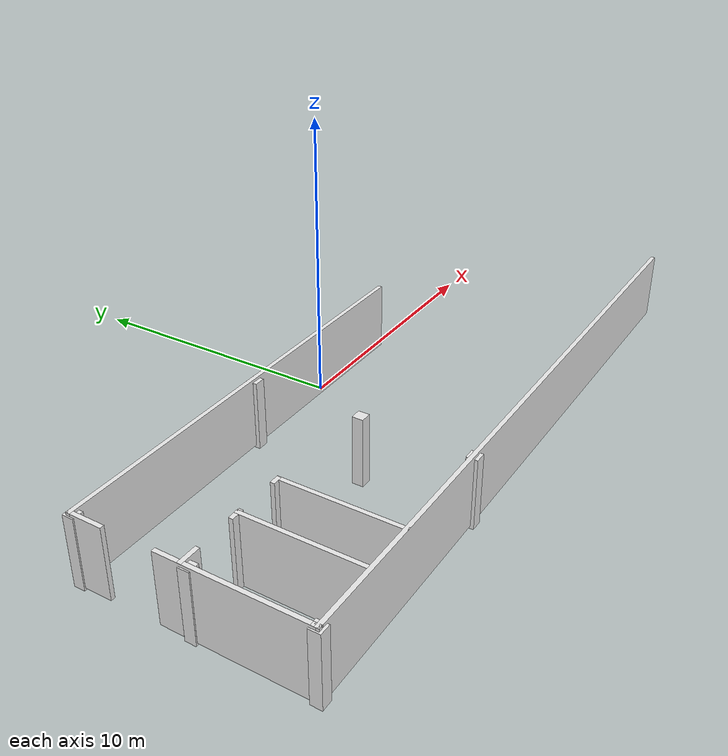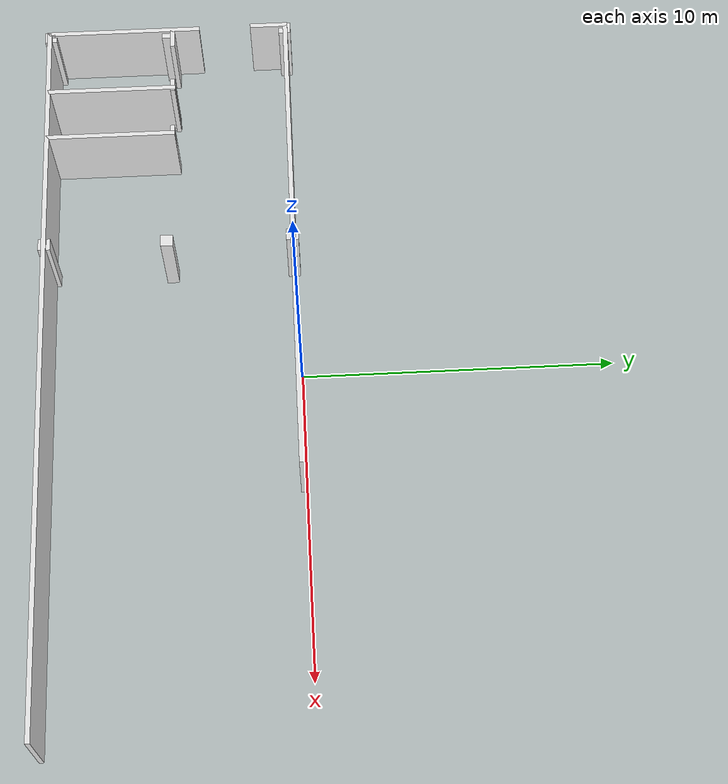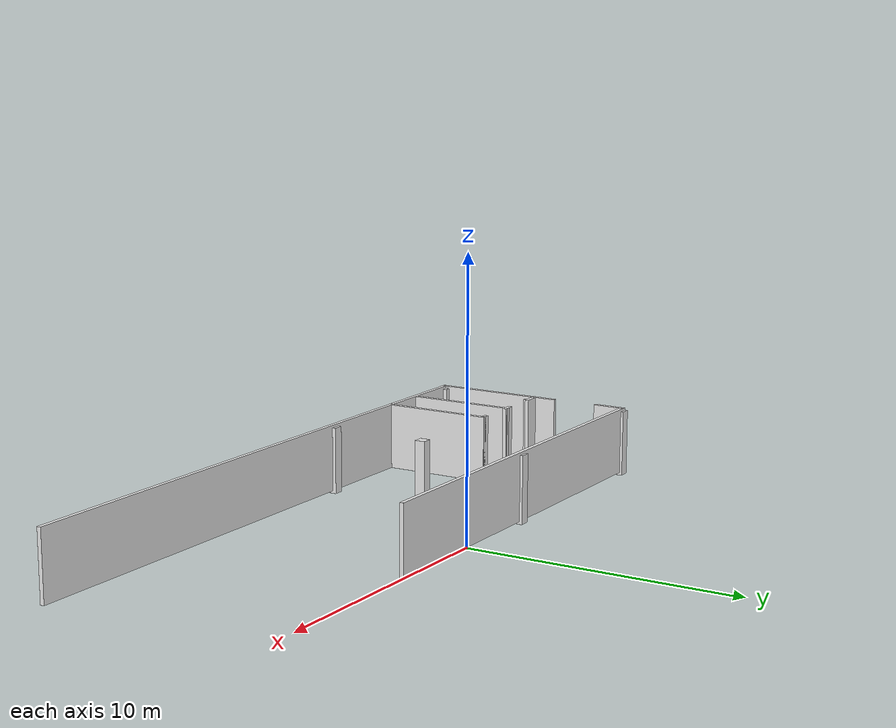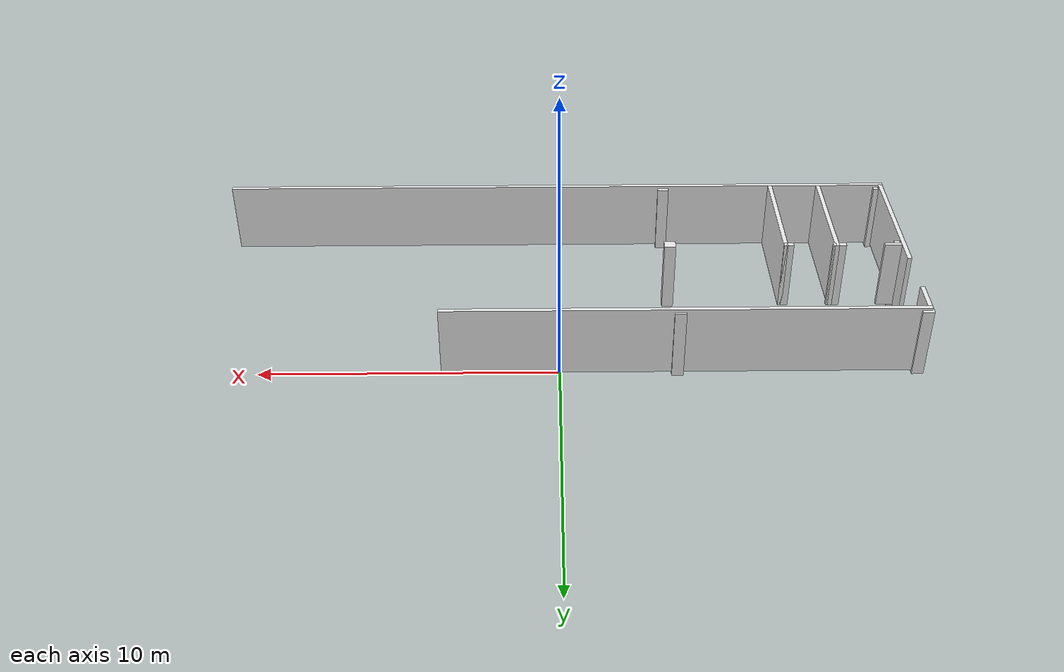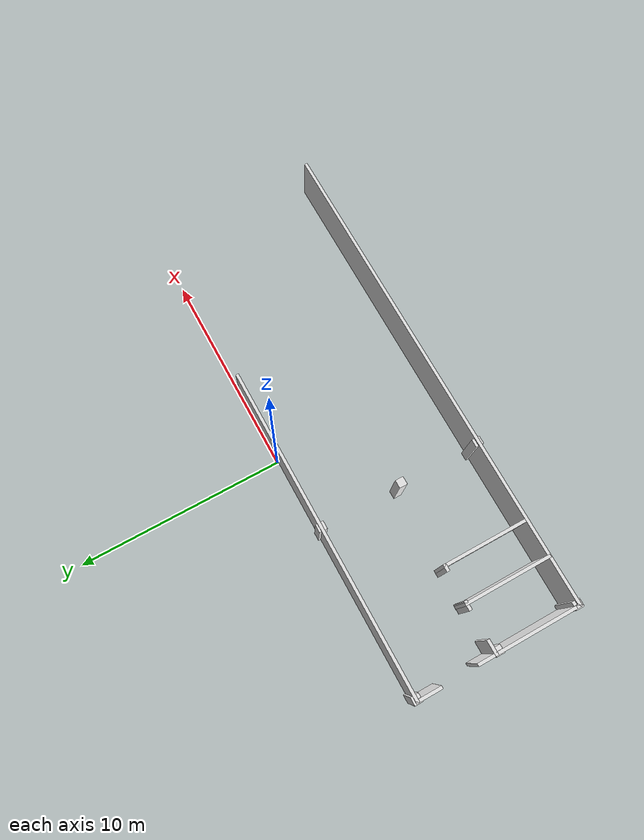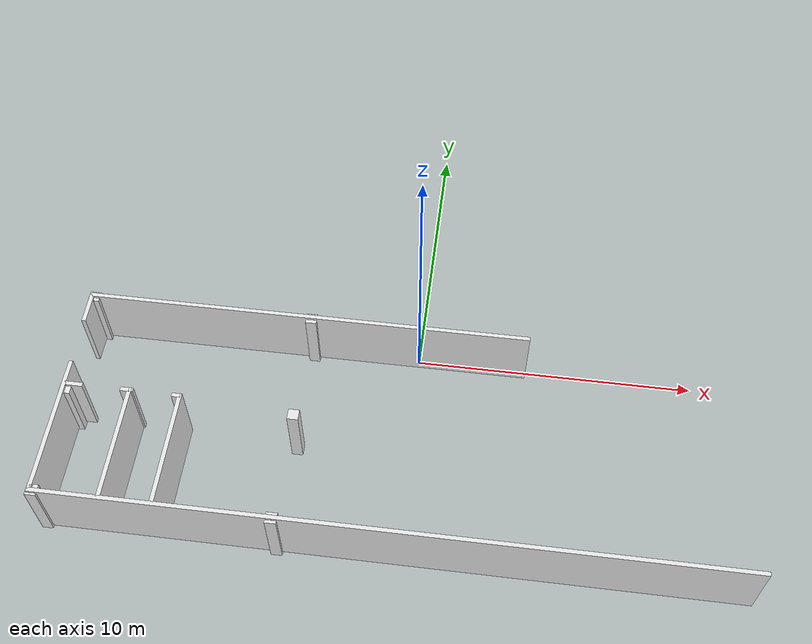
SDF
<sdf version="1.6">
 <model name="h_wall">
  <link name="Wall_1">
   <pose>-4.06743 -0.107748 0 0 -0 3.14159</pose>
   <visual name="Wall_1_Visual">
    <pose>0 0 1.25 0 -0 0</pose>
    <geometry><box><size>16 0.15 2.5</size></box></geometry>
    <material>
     <script><uri>file://media/materials/scripts/gazebo.material</uri><name>Gazebo/White</name></script>
     <ambient>1 1 1 1</ambient>
     <diffuse>0.7 0.7 0.7 1</diffuse>
     <specular>0.01 0.01 0.01 1</specular>
     <emissive>0 0 0 1</emissive>
    </material>
   </visual>
   <collision name="Wall_1_Collision">
    <pose>0 0 1.25 0 -0 0</pose>
    <geometry><box><size>16 0.15 2.5</size></box></geometry>
    <surface>
     <friction>
      <ode><mu>1</mu><mu2>1</mu2><fdir1>0 0 0</fdir1><slip1>0</slip1><slip2>0</slip2></ode>
      <torsional>
       <coefficient>1</coefficient>
       <patch_radius>0</patch_radius>
       <surface_radius>0</surface_radius>
       <use_patch_radius>1</use_patch_radius>
       <ode><slip>0</slip></ode>
      </torsional>
     </friction>
     <bounce><restitution_coefficient>0</restitution_coefficient><threshold>1e+06</threshold></bounce>
     <contact>
      <collide_without_contact>0</collide_without_contact>
      <collide_without_contact_bitmask>1</collide_without_contact_bitmask>
      <collide_bitmask>1</collide_bitmask>
      <ode>
       <soft_cfm>0</soft_cfm>
       <soft_erp>0.2</soft_erp>
       <kp>1e+13</kp>
       <kd>1</kd>
       <max_vel>0.01</max_vel>
       <min_depth>0</min_depth>
      </ode>
      <bullet>
       <split_impulse>1</split_impulse>
       <split_impulse_penetration_threshold>-0.01</split_impulse_penetration_threshold>
       <soft_cfm>0</soft_cfm>
       <soft_erp>0.2</soft_erp>
       <kp>1e+13</kp>
       <kd>1</kd>
      </bullet>
     </contact>
    </surface>
   </collision>
  </link>
  <link name="Wall_10">
   <pose>-0.032574 -8.025 0 0 -0 0</pose>
   <visual name="Wall_10_Visual">
    <pose>0 0 1.25 0 -0 0</pose>
    <geometry><box><size>24 0.15 2.5</size></box></geometry>
    <material>
     <script><uri>file://media/materials/scripts/gazebo.material</uri><name>Gazebo/White</name></script>
     <ambient>1 1 1 1</ambient>
     <diffuse>0.7 0.7 0.7 1</diffuse>
     <specular>0.01 0.01 0.01 1</specular>
     <emissive>0 0 0 1</emissive>
    </material>
   </visual>
   <collision name="Wall_10_Collision">
    <pose>0 0 1.25 0 -0 0</pose>
    <geometry><box><size>24 0.15 2.5</size></box></geometry>
    <surface>
     <friction>
      <ode><mu>1</mu><mu2>1</mu2><fdir1>0 0 0</fdir1><slip1>0</slip1><slip2>0</slip2></ode>
      <torsional>
       <coefficient>1</coefficient>
       <patch_radius>0</patch_radius>
       <surface_radius>0</surface_radius>
       <use_patch_radius>1</use_patch_radius>
       <ode><slip>0</slip></ode>
      </torsional>
     </friction>
     <bounce><restitution_coefficient>0</restitution_coefficient><threshold>1e+06</threshold></bounce>
     <contact>
      <collide_without_contact>0</collide_without_contact>
      <collide_without_contact_bitmask>1</collide_without_contact_bitmask>
      <collide_bitmask>1</collide_bitmask>
      <ode>
       <soft_cfm>0</soft_cfm>
       <soft_erp>0.2</soft_erp>
       <kp>1e+13</kp>
       <kd>1</kd>
       <max_vel>0.01</max_vel>
       <min_depth>0</min_depth>
      </ode>
      <bullet>
       <split_impulse>1</split_impulse>
       <split_impulse_penetration_threshold>-0.01</split_impulse_penetration_threshold>
       <soft_cfm>0</soft_cfm>
       <soft_erp>0.2</soft_erp>
       <kp>1e+13</kp>
       <kd>1</kd>
      </bullet>
     </contact>
    </surface>
   </collision>
  </link>
  <link name="Wall_19">
   <pose>-11.6601 -3.90046 0 0 -0 0</pose>
   <inertial>
    <inertia><ixx>nan</ixx><ixy>0</ixy><ixz>0</ixz><iyy>nan</iyy><iyz>0</iyz><izz>nan</izz></inertia>
    <mass>0</mass>
   </inertial>
   <visual name="Wall_19_Visual">
    <pose>0 0 1.25 0 -0 0</pose>
    <geometry><box><size>0.736562 0.15 2.5</size></box></geometry>
    <material>
     <script><uri>file://media/materials/scripts/gazebo.material</uri><name>Gazebo/White</name></script>
     <ambient>1 1 1 1</ambient>
     <diffuse>0.7 0.7 0.7 1</diffuse>
     <specular>0.01 0.01 0.01 1</specular>
     <emissive>0 0 0 1</emissive>
    </material>
   </visual>
   <collision name="Wall_19_Collision">
    <pose>0 0 1.25 0 -0 0</pose>
    <geometry><box><size>0.736562 0.15 2.5</size></box></geometry>
    <surface>
     <friction>
      <ode><mu>1</mu><mu2>1</mu2><fdir1>0 0 0</fdir1><slip1>0</slip1><slip2>0</slip2></ode>
      <torsional>
       <coefficient>1</coefficient>
       <patch_radius>0</patch_radius>
       <surface_radius>0</surface_radius>
       <use_patch_radius>1</use_patch_radius>
       <ode><slip>0</slip></ode>
      </torsional>
     </friction>
     <bounce><restitution_coefficient>0</restitution_coefficient><threshold>1e+06</threshold></bounce>
     <contact>
      <collide_without_contact>0</collide_without_contact>
      <collide_without_contact_bitmask>1</collide_without_contact_bitmask>
      <collide_bitmask>1</collide_bitmask>
      <ode>
       <soft_cfm>0</soft_cfm>
       <soft_erp>0.2</soft_erp>
       <kp>1e+13</kp>
       <kd>1</kd>
       <max_vel>0.01</max_vel>
       <min_depth>0</min_depth>
      </ode>
      <bullet>
       <split_impulse>1</split_impulse>
       <split_impulse_penetration_threshold>-0.01</split_impulse_penetration_threshold>
       <soft_cfm>0</soft_cfm>
       <soft_erp>0.2</soft_erp>
       <kp>1e+13</kp>
       <kd>1</kd>
      </bullet>
     </contact>
    </surface>
   </collision>
  </link>
  <link name="Wall_2">
   <pose>-11.9924 -0.657748 0 0 0 -1.5708</pose>
   <visual name="Wall_2_Visual">
    <pose>0 0 1.25 0 -0 0</pose>
    <geometry><box><size>1.25 0.15 2.5</size></box></geometry>
    <material>
     <script><uri>file://media/materials/scripts/gazebo.material</uri><name>Gazebo/White</name></script>
     <ambient>1 1 1 1</ambient>
     <diffuse>0.7 0.7 0.7 1</diffuse>
     <specular>0.01 0.01 0.01 1</specular>
     <emissive>0 0 0 1</emissive>
    </material>
   </visual>
   <collision name="Wall_2_Collision">
    <pose>0 0 1.25 0 -0 0</pose>
    <geometry><box><size>1.25 0.15 2.5</size></box></geometry>
    <surface>
     <friction>
      <ode><mu>1</mu><mu2>1</mu2><fdir1>0 0 0</fdir1><slip1>0</slip1><slip2>0</slip2></ode>
      <torsional>
       <coefficient>1</coefficient>
       <patch_radius>0</patch_radius>
       <surface_radius>0</surface_radius>
       <use_patch_radius>1</use_patch_radius>
       <ode><slip>0</slip></ode>
      </torsional>
     </friction>
     <bounce><restitution_coefficient>0</restitution_coefficient><threshold>1e+06</threshold></bounce>
     <contact>
      <collide_without_contact>0</collide_without_contact>
      <collide_without_contact_bitmask>1</collide_without_contact_bitmask>
      <collide_bitmask>1</collide_bitmask>
      <ode>
       <soft_cfm>0</soft_cfm>
       <soft_erp>0.2</soft_erp>
       <kp>1e+13</kp>
       <kd>1</kd>
       <max_vel>0.01</max_vel>
       <min_depth>0</min_depth>
      </ode>
      <bullet>
       <split_impulse>1</split_impulse>
       <split_impulse_penetration_threshold>-0.01</split_impulse_penetration_threshold>
       <soft_cfm>0</soft_cfm>
       <soft_erp>0.2</soft_erp>
       <kp>1e+13</kp>
       <kd>1</kd>
      </bullet>
     </contact>
    </surface>
   </collision>
  </link>
  <link name="Wall_21">
   <pose>-9.73392 -3.90046 0 0 -0 0</pose>
   <inertial>
    <inertia><ixx>nan</ixx><ixy>0</ixy><ixz>0</ixz><iyy>nan</iyy><iyz>0</iyz><izz>nan</izz></inertia>
    <mass>0</mass>
   </inertial>
   <visual name="Wall_21_Visual">
    <pose>0 0 1.25 0 -0 0</pose>
    <geometry><box><size>0.453657 0.15 2.5</size></box></geometry>
    <material>
     <script><uri>file://media/materials/scripts/gazebo.material</uri><name>Gazebo/White</name></script>
     <ambient>1 1 1 1</ambient>
     <diffuse>0.7 0.7 0.7 1</diffuse>
     <specular>0.01 0.01 0.01 1</specular>
     <emissive>0 0 0 1</emissive>
    </material>
   </visual>
   <collision name="Wall_21_Collision">
    <pose>0 0 1.25 0 -0 0</pose>
    <geometry><box><size>0.453657 0.15 2.5</size></box></geometry>
    <surface>
     <friction>
      <ode><mu>1</mu><mu2>1</mu2><fdir1>0 0 0</fdir1><slip1>0</slip1><slip2>0</slip2></ode>
      <torsional>
       <coefficient>1</coefficient>
       <patch_radius>0</patch_radius>
       <surface_radius>0</surface_radius>
       <use_patch_radius>1</use_patch_radius>
       <ode><slip>0</slip></ode>
      </torsional>
     </friction>
     <bounce><restitution_coefficient>0</restitution_coefficient><threshold>1e+06</threshold></bounce>
     <contact>
      <collide_without_contact>0</collide_without_contact>
      <collide_without_contact_bitmask>1</collide_without_contact_bitmask>
      <collide_bitmask>1</collide_bitmask>
      <ode>
       <soft_cfm>0</soft_cfm>
       <soft_erp>0.2</soft_erp>
       <kp>1e+13</kp>
       <kd>1</kd>
       <max_vel>0.01</max_vel>
       <min_depth>0</min_depth>
      </ode>
      <bullet>
       <split_impulse>1</split_impulse>
       <split_impulse_penetration_threshold>-0.01</split_impulse_penetration_threshold>
       <soft_cfm>0</soft_cfm>
       <soft_erp>0.2</soft_erp>
       <kp>1e+13</kp>
       <kd>1</kd>
      </bullet>
     </contact>
    </surface>
   </collision>
  </link>
  <link name="Wall_24">
   <pose>-9.64084 -5.94162 0 0 -0 1.5708</pose>
   <visual name="Wall_24_Visual">
    <pose>0 0 1.25 0 -0 0</pose>
    <geometry><box><size>4.25 0.15 2.5</size></box></geometry>
    <material>
     <script><uri>file://media/materials/scripts/gazebo.material</uri><name>Gazebo/White</name></script>
     <ambient>1 1 1 1</ambient>
     <diffuse>0.7 0.7 0.7 1</diffuse>
     <specular>0.01 0.01 0.01 1</specular>
     <emissive>0 0 0 1</emissive>
    </material>
   </visual>
   <collision name="Wall_24_Collision">
    <pose>0 0 1.25 0 -0 0</pose>
    <geometry><box><size>4.25 0.15 2.5</size></box></geometry>
    <surface>
     <friction>
      <ode><mu>1</mu><mu2>1</mu2><fdir1>0 0 0</fdir1><slip1>0</slip1><slip2>0</slip2></ode>
      <torsional>
       <coefficient>1</coefficient>
       <patch_radius>0</patch_radius>
       <surface_radius>0</surface_radius>
       <use_patch_radius>1</use_patch_radius>
       <ode><slip>0</slip></ode>
      </torsional>
     </friction>
     <bounce><restitution_coefficient>0</restitution_coefficient><threshold>1e+06</threshold></bounce>
     <contact>
      <collide_without_contact>0</collide_without_contact>
      <collide_without_contact_bitmask>1</collide_without_contact_bitmask>
      <collide_bitmask>1</collide_bitmask>
      <ode>
       <soft_cfm>0</soft_cfm>
       <soft_erp>0.2</soft_erp>
       <kp>1e+13</kp>
       <kd>1</kd>
       <max_vel>0.01</max_vel>
       <min_depth>0</min_depth>
      </ode>
      <bullet>
       <split_impulse>1</split_impulse>
       <split_impulse_penetration_threshold>-0.01</split_impulse_penetration_threshold>
       <soft_cfm>0</soft_cfm>
       <soft_erp>0.2</soft_erp>
       <kp>1e+13</kp>
       <kd>1</kd>
      </bullet>
     </contact>
    </surface>
   </collision>
  </link>
  <link name="Wall_30">
   <pose>-7.97483 -3.91861 0 0 -0 0</pose>
   <inertial>
    <inertia><ixx>nan</ixx><ixy>0</ixy><ixz>0</ixz><iyy>nan</iyy><iyz>0</iyz><izz>nan</izz></inertia>
    <mass>0</mass>
   </inertial>
   <visual name="Wall_30_Visual">
    <pose>0 0 1.25 0 -0 0</pose>
    <geometry><box><size>0.337076 0.15 2.5</size></box></geometry>
    <material>
     <script><uri>file://media/materials/scripts/gazebo.material</uri><name>Gazebo/White</name></script>
     <ambient>1 1 1 1</ambient>
     <diffuse>0.7 0.7 0.7 1</diffuse>
     <specular>0.01 0.01 0.01 1</specular>
     <emissive>0 0 0 1</emissive>
    </material>
   </visual>
   <collision name="Wall_30_Collision">
    <pose>0 0 1.25 0 -0 0</pose>
    <geometry><box><size>0.337076 0.15 2.5</size></box></geometry>
    <surface>
     <friction>
      <ode><mu>1</mu><mu2>1</mu2><fdir1>0 0 0</fdir1><slip1>0</slip1><slip2>0</slip2></ode>
      <torsional>
       <coefficient>1</coefficient>
       <patch_radius>0</patch_radius>
       <surface_radius>0</surface_radius>
       <use_patch_radius>1</use_patch_radius>
       <ode><slip>0</slip></ode>
      </torsional>
     </friction>
     <bounce><restitution_coefficient>0</restitution_coefficient><threshold>1e+06</threshold></bounce>
     <contact>
      <collide_without_contact>0</collide_without_contact>
      <collide_without_contact_bitmask>1</collide_without_contact_bitmask>
      <collide_bitmask>1</collide_bitmask>
      <ode>
       <soft_cfm>0</soft_cfm>
       <soft_erp>0.2</soft_erp>
       <kp>1e+13</kp>
       <kd>1</kd>
       <max_vel>0.01</max_vel>
       <min_depth>0</min_depth>
      </ode>
      <bullet>
       <split_impulse>1</split_impulse>
       <split_impulse_penetration_threshold>-0.01</split_impulse_penetration_threshold>
       <soft_cfm>0</soft_cfm>
       <soft_erp>0.2</soft_erp>
       <kp>1e+13</kp>
       <kd>1</kd>
      </bullet>
     </contact>
    </surface>
   </collision>
  </link>
  <link name="Wall_31">
   <pose>-7.86723 -5.96861 0 0 0 -1.5708</pose>
   <visual name="Wall_31_Visual">
    <pose>0 0 1.25 0 -0 0</pose>
    <geometry><box><size>4.25 0.15 2.5</size></box></geometry>
    <material>
     <script><uri>file://media/materials/scripts/gazebo.material</uri><name>Gazebo/White</name></script>
     <ambient>1 1 1 1</ambient>
     <diffuse>0.7 0.7 0.7 1</diffuse>
     <specular>0.01 0.01 0.01 1</specular>
     <emissive>0 0 0 1</emissive>
    </material>
   </visual>
   <collision name="Wall_31_Collision">
    <pose>0 0 1.25 0 -0 0</pose>
    <geometry><box><size>4.25 0.15 2.5</size></box></geometry>
    <surface>
     <friction>
      <ode><mu>1</mu><mu2>1</mu2><fdir1>0 0 0</fdir1><slip1>0</slip1><slip2>0</slip2></ode>
      <torsional>
       <coefficient>1</coefficient>
       <patch_radius>0</patch_radius>
       <surface_radius>0</surface_radius>
       <use_patch_radius>1</use_patch_radius>
       <ode><slip>0</slip></ode>
      </torsional>
     </friction>
     <bounce><restitution_coefficient>0</restitution_coefficient><threshold>1e+06</threshold></bounce>
     <contact>
      <collide_without_contact>0</collide_without_contact>
      <collide_without_contact_bitmask>1</collide_without_contact_bitmask>
      <collide_bitmask>1</collide_bitmask>
      <ode>
       <soft_cfm>0</soft_cfm>
       <soft_erp>0.2</soft_erp>
       <kp>1e+13</kp>
       <kd>1</kd>
       <max_vel>0.01</max_vel>
       <min_depth>0</min_depth>
      </ode>
      <bullet>
       <split_impulse>1</split_impulse>
       <split_impulse_penetration_threshold>-0.01</split_impulse_penetration_threshold>
       <soft_cfm>0</soft_cfm>
       <soft_erp>0.2</soft_erp>
       <kp>1e+13</kp>
       <kd>1</kd>
      </bullet>
     </contact>
    </surface>
   </collision>
  </link>
  <link name="Wall_6">
   <pose>-11.9576 -5.5 0 0 0 -1.5708</pose>
   <visual name="Wall_6_Visual">
    <pose>0 0 1.25 0 -0 0</pose>
    <geometry><box><size>5 0.15 2.5</size></box></geometry>
    <material>
     <script><uri>file://media/materials/scripts/gazebo.material</uri><name>Gazebo/White</name></script>
     <ambient>1 1 1 1</ambient>
     <diffuse>0.7 0.7 0.7 1</diffuse>
     <specular>0.01 0.01 0.01 1</specular>
     <emissive>0 0 0 1</emissive>
    </material>
   </visual>
   <collision name="Wall_6_Collision">
    <pose>0 0 1.25 0 -0 0</pose>
    <geometry><box><size>5 0.15 2.5</size></box></geometry>
    <surface>
     <friction>
      <ode><mu>1</mu><mu2>1</mu2><fdir1>0 0 0</fdir1><slip1>0</slip1><slip2>0</slip2></ode>
      <torsional>
       <coefficient>1</coefficient>
       <patch_radius>0</patch_radius>
       <surface_radius>0</surface_radius>
       <use_patch_radius>1</use_patch_radius>
       <ode><slip>0</slip></ode>
      </torsional>
     </friction>
     <bounce><restitution_coefficient>0</restitution_coefficient><threshold>1e+06</threshold></bounce>
     <contact>
      <collide_without_contact>0</collide_without_contact>
      <collide_without_contact_bitmask>1</collide_without_contact_bitmask>
      <collide_bitmask>1</collide_bitmask>
      <ode>
       <soft_cfm>0</soft_cfm>
       <soft_erp>0.2</soft_erp>
       <kp>1e+13</kp>
       <kd>1</kd>
       <max_vel>0.01</max_vel>
       <min_depth>0</min_depth>
      </ode>
      <bullet>
       <split_impulse>1</split_impulse>
       <split_impulse_penetration_threshold>-0.01</split_impulse_penetration_threshold>
       <soft_cfm>0</soft_cfm>
       <soft_erp>0.2</soft_erp>
       <kp>1e+13</kp>
       <kd>1</kd>
      </bullet>
     </contact>
    </surface>
   </collision>
  </link>
  <link name="Wall_7">
   <pose>-11.9576 -7.975 0 0 0 -1.5708</pose>
   <visual name="Wall_7_Visual">
    <pose>0 0 1.25 0 -0 0</pose>
    <geometry><box><size>0.25 0.15 2.5</size></box></geometry>
    <material>
     <script><uri>file://media/materials/scripts/gazebo.material</uri><name>Gazebo/White</name></script>
     <ambient>1 1 1 1</ambient>
     <diffuse>0.7 0.7 0.7 1</diffuse>
     <specular>0.01 0.01 0.01 1</specular>
     <emissive>0 0 0 1</emissive>
    </material>
   </visual>
   <collision name="Wall_7_Collision">
    <pose>0 0 1.25 0 -0 0</pose>
    <geometry><box><size>0.25 0.15 2.5</size></box></geometry>
    <surface>
     <friction>
      <ode><mu>1</mu><mu2>1</mu2><fdir1>0 0 0</fdir1><slip1>0</slip1><slip2>0</slip2></ode>
      <torsional>
       <coefficient>1</coefficient>
       <patch_radius>0</patch_radius>
       <surface_radius>0</surface_radius>
       <use_patch_radius>1</use_patch_radius>
       <ode><slip>0</slip></ode>
      </torsional>
     </friction>
     <bounce><restitution_coefficient>0</restitution_coefficient><threshold>1e+06</threshold></bounce>
     <contact>
      <collide_without_contact>0</collide_without_contact>
      <collide_without_contact_bitmask>1</collide_without_contact_bitmask>
      <collide_bitmask>1</collide_bitmask>
      <ode>
       <soft_cfm>0</soft_cfm>
       <soft_erp>0.2</soft_erp>
       <kp>1e+13</kp>
       <kd>1</kd>
       <max_vel>0.01</max_vel>
       <min_depth>0</min_depth>
      </ode>
      <bullet>
       <split_impulse>1</split_impulse>
       <split_impulse_penetration_threshold>-0.01</split_impulse_penetration_threshold>
       <soft_cfm>0</soft_cfm>
       <soft_erp>0.2</soft_erp>
       <kp>1e+13</kp>
       <kd>1</kd>
      </bullet>
     </contact>
    </surface>
   </collision>
  </link>
  <link name="Wall_8">
   <pose>-11.9576 -8.025 0 0 -0 0</pose>
   <visual name="Wall_8_Visual">
    <pose>0 0 1.25 0 -0 0</pose>
    <geometry><box><size>0.15 0.15 2.5</size></box></geometry>
    <material>
     <script><uri>file://media/materials/scripts/gazebo.material</uri><name>Gazebo/White</name></script>
     <ambient>1 1 1 1</ambient>
     <diffuse>0.7 0.7 0.7 1</diffuse>
     <specular>0.01 0.01 0.01 1</specular>
     <emissive>0 0 0 1</emissive>
    </material>
   </visual>
   <collision name="Wall_8_Collision">
    <pose>0 0 1.25 0 -0 0</pose>
    <geometry><box><size>0.15 0.15 2.5</size></box></geometry>
    <surface>
     <friction>
      <ode><mu>1</mu><mu2>1</mu2><fdir1>0 0 0</fdir1><slip1>0</slip1><slip2>0</slip2></ode>
      <torsional>
       <coefficient>1</coefficient>
       <patch_radius>0</patch_radius>
       <surface_radius>0</surface_radius>
       <use_patch_radius>1</use_patch_radius>
       <ode><slip>0</slip></ode>
      </torsional>
     </friction>
     <bounce><restitution_coefficient>0</restitution_coefficient><threshold>1e+06</threshold></bounce>
     <contact>
      <collide_without_contact>0</collide_without_contact>
      <collide_without_contact_bitmask>1</collide_without_contact_bitmask>
      <collide_bitmask>1</collide_bitmask>
      <ode>
       <soft_cfm>0</soft_cfm>
       <soft_erp>0.2</soft_erp>
       <kp>1e+13</kp>
       <kd>1</kd>
       <max_vel>0.01</max_vel>
       <min_depth>0</min_depth>
      </ode>
      <bullet>
       <split_impulse>1</split_impulse>
       <split_impulse_penetration_threshold>-0.01</split_impulse_penetration_threshold>
       <soft_cfm>0</soft_cfm>
       <soft_erp>0.2</soft_erp>
       <kp>1e+13</kp>
       <kd>1</kd>
      </bullet>
     </contact>
    </surface>
   </collision>
  </link>
  <link name="link_0_clone_clone_0_clone">
   <pose>-11.9158 -0.127115 1.1564 0 -0 0</pose>
   <inertial>
    <mass>0.670895</mass>
    <inertia>
     <ixx>0.374827</ixx>
     <ixy>0</ixy>
     <ixz>0</ixz>
     <iyy>0.367239</iyy>
     <iyz>0</iyz>
     <izz>0.0306942</izz>
    </inertia>
   </inertial>
   <visual name="visual">
    <geometry><box><size>0.39 0.39 2.5</size></box></geometry>
    <material>
     <lighting>1</lighting>
     <script><uri>file://media/materials/scripts/gazebo.material</uri><name>Gazebo/White</name></script>
     <ambient>0.3 0.3 0.3 1</ambient>
     <diffuse>0.7 0.7 0.7 1</diffuse>
     <specular>0.01 0.01 0.01 1</specular>
     <emissive>0 0 0 1</emissive>
     <shader type="vertex"><normal_map>__default__</normal_map></shader>
    </material>
   </visual>
   <collision name="collision">
    <geometry><box><size>0.39 0.39 2.5</size></box></geometry>
    <surface>
     <friction>
      <ode><mu>1</mu><mu2>1</mu2><fdir1>0 0 0</fdir1><slip1>0</slip1><slip2>0</slip2></ode>
      <torsional>
       <coefficient>1</coefficient>
       <patch_radius>0</patch_radius>
       <surface_radius>0</surface_radius>
       <use_patch_radius>1</use_patch_radius>
       <ode><slip>0</slip></ode>
      </torsional>
     </friction>
     <bounce><restitution_coefficient>0</restitution_coefficient><threshold>1e+06</threshold></bounce>
     <contact>
      <collide_without_contact>0</collide_without_contact>
      <collide_without_contact_bitmask>1</collide_without_contact_bitmask>
      <collide_bitmask>1</collide_bitmask>
      <ode>
       <soft_cfm>0</soft_cfm>
       <soft_erp>0.2</soft_erp>
       <kp>1e+13</kp>
       <kd>1</kd>
       <max_vel>0.01</max_vel>
       <min_depth>0</min_depth>
      </ode>
      <bullet>
       <split_impulse>1</split_impulse>
       <split_impulse_penetration_threshold>-0.01</split_impulse_penetration_threshold>
       <soft_cfm>0</soft_cfm>
       <soft_erp>0.2</soft_erp>
       <kp>1e+13</kp>
       <kd>1</kd>
      </bullet>
     </contact>
    </surface>
   </collision>
  </link>
  <link name="link_0_clone_clone_0_clone_clone">
   <pose>-11.8878 -7.98296 1.1564 0 -0 0</pose>
   <inertial>
    <mass>0.670895</mass>
    <inertia>
     <ixx>0.374827</ixx>
     <ixy>0</ixy>
     <ixz>0</ixz>
     <iyy>0.367239</iyy>
     <iyz>0</iyz>
     <izz>0.0306942</izz>
    </inertia>
   </inertial>
   <visual name="visual">
    <geometry><box><size>0.39 0.39 2.5</size></box></geometry>
    <material>
     <lighting>1</lighting>
     <script><uri>file://media/materials/scripts/gazebo.material</uri><name>Gazebo/White</name></script>
     <ambient>0.3 0.3 0.3 1</ambient>
     <diffuse>0.7 0.7 0.7 1</diffuse>
     <specular>0.01 0.01 0.01 1</specular>
     <emissive>0 0 0 1</emissive>
     <shader type="vertex"><normal_map>__default__</normal_map></shader>
    </material>
   </visual>
   <collision name="collision">
    <geometry><box><size>0.39 0.39 2.5</size></box></geometry>
    <surface>
     <friction>
      <ode><mu>1</mu><mu2>1</mu2><fdir1>0 0 0</fdir1><slip1>0</slip1><slip2>0</slip2></ode>
      <torsional>
       <coefficient>1</coefficient>
       <patch_radius>0</patch_radius>
       <surface_radius>0</surface_radius>
       <use_patch_radius>1</use_patch_radius>
       <ode><slip>0</slip></ode>
      </torsional>
     </friction>
     <bounce><restitution_coefficient>0</restitution_coefficient><threshold>1e+06</threshold></bounce>
     <contact>
      <collide_without_contact>0</collide_without_contact>
      <collide_without_contact_bitmask>1</collide_without_contact_bitmask>
      <collide_bitmask>1</collide_bitmask>
      <ode>
       <soft_cfm>0</soft_cfm>
       <soft_erp>0.2</soft_erp>
       <kp>1e+13</kp>
       <kd>1</kd>
       <max_vel>0.01</max_vel>
       <min_depth>0</min_depth>
      </ode>
      <bullet>
       <split_impulse>1</split_impulse>
       <split_impulse_penetration_threshold>-0.01</split_impulse_penetration_threshold>
       <soft_cfm>0</soft_cfm>
       <soft_erp>0.2</soft_erp>
       <kp>1e+13</kp>
       <kd>1</kd>
      </bullet>
     </contact>
    </surface>
   </collision>
  </link>
  <link name="link_0_clone_clone_0_clone_clone_clone">
   <pose>-3.91581 -8.01557 1.1564 0 -0 0</pose>
   <inertial>
    <mass>0.670895</mass>
    <inertia>
     <ixx>0.374827</ixx>
     <ixy>0</ixy>
     <ixz>0</ixz>
     <iyy>0.367239</iyy>
     <iyz>0</iyz>
     <izz>0.0306942</izz>
    </inertia>
   </inertial>
   <visual name="visual">
    <geometry><box><size>0.39 0.39 2.5</size></box></geometry>
    <material>
     <lighting>1</lighting>
     <script><uri>file://media/materials/scripts/gazebo.material</uri><name>Gazebo/White</name></script>
     <ambient>0.3 0.3 0.3 1</ambient>
     <diffuse>0.7 0.7 0.7 1</diffuse>
     <specular>0.01 0.01 0.01 1</specular>
     <emissive>0 0 0 1</emissive>
     <shader type="vertex"><normal_map>__default__</normal_map></shader>
    </material>
   </visual>
   <collision name="collision">
    <geometry><box><size>0.39 0.39 2.5</size></box></geometry>
    <surface>
     <friction>
      <ode><mu>1</mu><mu2>1</mu2><fdir1>0 0 0</fdir1><slip1>0</slip1><slip2>0</slip2></ode>
      <torsional>
       <coefficient>1</coefficient>
       <patch_radius>0</patch_radius>
       <surface_radius>0</surface_radius>
       <use_patch_radius>1</use_patch_radius>
       <ode><slip>0</slip></ode>
      </torsional>
     </friction>
     <bounce><restitution_coefficient>0</restitution_coefficient><threshold>1e+06</threshold></bounce>
     <contact>
      <collide_without_contact>0</collide_without_contact>
      <collide_without_contact_bitmask>1</collide_without_contact_bitmask>
      <collide_bitmask>1</collide_bitmask>
      <ode>
       <soft_cfm>0</soft_cfm>
       <soft_erp>0.2</soft_erp>
       <kp>1e+13</kp>
       <kd>1</kd>
       <max_vel>0.01</max_vel>
       <min_depth>0</min_depth>
      </ode>
      <bullet>
       <split_impulse>1</split_impulse>
       <split_impulse_penetration_threshold>-0.01</split_impulse_penetration_threshold>
       <soft_cfm>0</soft_cfm>
       <soft_erp>0.2</soft_erp>
       <kp>1e+13</kp>
       <kd>1</kd>
      </bullet>
     </contact>
    </surface>
   </collision>
  </link>
  <link name="link_0_clone_clone_0_clone_clone_clone_clone">
   <pose>-3.87916 -4.12711 1.1564 0 -0 0</pose>
   <inertial>
    <mass>0.670895</mass>
    <inertia>
     <ixx>0.374827</ixx>
     <ixy>0</ixy>
     <ixz>0</ixz>
     <iyy>0.367239</iyy>
     <iyz>0</iyz>
     <izz>0.0306942</izz>
    </inertia>
   </inertial>
   <visual name="visual">
    <geometry><box><size>0.39 0.39 2.5</size></box></geometry>
    <material>
     <lighting>1</lighting>
     <script><uri>file://media/materials/scripts/gazebo.material</uri><name>Gazebo/White</name></script>
     <ambient>0.3 0.3 0.3 1</ambient>
     <diffuse>0.7 0.7 0.7 1</diffuse>
     <specular>0.01 0.01 0.01 1</specular>
     <emissive>0 0 0 1</emissive>
     <shader type="vertex"><normal_map>__default__</normal_map></shader>
    </material>
   </visual>
   <collision name="collision">
    <geometry><box><size>0.39 0.39 2.5</size></box></geometry>
    <surface>
     <friction>
      <ode><mu>1</mu><mu2>1</mu2><fdir1>0 0 0</fdir1><slip1>0</slip1><slip2>0</slip2></ode>
      <torsional>
       <coefficient>1</coefficient>
       <patch_radius>0</patch_radius>
       <surface_radius>0</surface_radius>
       <use_patch_radius>1</use_patch_radius>
       <ode><slip>0</slip></ode>
      </torsional>
     </friction>
     <bounce><restitution_coefficient>0</restitution_coefficient><threshold>1e+06</threshold></bounce>
     <contact>
      <collide_without_contact>0</collide_without_contact>
      <collide_without_contact_bitmask>1</collide_without_contact_bitmask>
      <collide_bitmask>1</collide_bitmask>
      <ode>
       <soft_cfm>0</soft_cfm>
       <soft_erp>0.2</soft_erp>
       <kp>1e+13</kp>
       <kd>1</kd>
       <max_vel>0.01</max_vel>
       <min_depth>0</min_depth>
      </ode>
      <bullet>
       <split_impulse>1</split_impulse>
       <split_impulse_penetration_threshold>-0.01</split_impulse_penetration_threshold>
       <soft_cfm>0</soft_cfm>
       <soft_erp>0.2</soft_erp>
       <kp>1e+13</kp>
       <kd>1</kd>
      </bullet>
     </contact>
    </surface>
   </collision>
  </link>
  <link name="link_0_clone_clone_0_clone_clone_clone_clone_clone_0">
   <pose>-3.91581 -0.127115 1.1564 0 -0 0</pose>
   <inertial>
    <mass>0.670895</mass>
    <inertia>
     <ixx>0.374827</ixx>
     <ixy>0</ixy>
     <ixz>0</ixz>
     <iyy>0.367239</iyy>
     <iyz>0</iyz>
     <izz>0.0306942</izz>
    </inertia>
   </inertial>
   <visual name="visual">
    <geometry><box><size>0.39 0.39 2.5</size></box></geometry>
    <material>
     <lighting>1</lighting>
     <script><uri>file://media/materials/scripts/gazebo.material</uri><name>Gazebo/White</name></script>
     <ambient>0.3 0.3 0.3 1</ambient>
     <diffuse>0.7 0.7 0.7 1</diffuse>
     <specular>0.01 0.01 0.01 1</specular>
     <emissive>0 0 0 1</emissive>
     <shader type="vertex"><normal_map>__default__</normal_map></shader>
    </material>
   </visual>
   <collision name="collision">
    <geometry><box><size>0.39 0.39 2.5</size></box></geometry>
    <surface>
     <friction>
      <ode><mu>1</mu><mu2>1</mu2><fdir1>0 0 0</fdir1><slip1>0</slip1><slip2>0</slip2></ode>
      <torsional>
       <coefficient>1</coefficient>
       <patch_radius>0</patch_radius>
       <surface_radius>0</surface_radius>
       <use_patch_radius>1</use_patch_radius>
       <ode><slip>0</slip></ode>
      </torsional>
     </friction>
     <bounce><restitution_coefficient>0</restitution_coefficient><threshold>1e+06</threshold></bounce>
     <contact>
      <collide_without_contact>0</collide_without_contact>
      <collide_without_contact_bitmask>1</collide_without_contact_bitmask>
      <collide_bitmask>1</collide_bitmask>
      <ode>
       <soft_cfm>0</soft_cfm>
       <soft_erp>0.2</soft_erp>
       <kp>1e+13</kp>
       <kd>1</kd>
       <max_vel>0.01</max_vel>
       <min_depth>0</min_depth>
      </ode>
      <bullet>
       <split_impulse>1</split_impulse>
       <split_impulse_penetration_threshold>-0.01</split_impulse_penetration_threshold>
       <soft_cfm>0</soft_cfm>
       <soft_erp>0.2</soft_erp>
       <kp>1e+13</kp>
       <kd>1</kd>
      </bullet>
     </contact>
    </surface>
   </collision>
  </link>
  <link name="link_0_clone_clone_0_clone_clone_clone_clone_clone_1">
   <pose>-11.8827 -4.06193 1.1564 0 -0 0</pose>
   <inertial>
    <mass>0.670895</mass>
    <inertia>
     <ixx>0.374827</ixx>
     <ixy>0</ixy>
     <ixz>0</ixz>
     <iyy>0.367239</iyy>
     <iyz>0</iyz>
     <izz>0.0306942</izz>
    </inertia>
   </inertial>
   <visual name="visual">
    <geometry><box><size>0.39 0.39 2.5</size></box></geometry>
    <material>
     <lighting>1</lighting>
     <script><uri>file://media/materials/scripts/gazebo.material</uri><name>Gazebo/White</name></script>
     <ambient>0.3 0.3 0.3 1</ambient>
     <diffuse>0.7 0.7 0.7 1</diffuse>
     <specular>0.01 0.01 0.01 1</specular>
     <emissive>0 0 0 1</emissive>
     <shader type="vertex"><normal_map>__default__</normal_map></shader>
    </material>
   </visual>
   <collision name="collision">
    <geometry><box><size>0.39 0.39 2.5</size></box></geometry>
    <surface>
     <friction>
      <ode><mu>1</mu><mu2>1</mu2><fdir1>0 0 0</fdir1><slip1>0</slip1><slip2>0</slip2></ode>
      <torsional>
       <coefficient>1</coefficient>
       <patch_radius>0</patch_radius>
       <surface_radius>0</surface_radius>
       <use_patch_radius>1</use_patch_radius>
       <ode><slip>0</slip></ode>
      </torsional>
     </friction>
     <bounce><restitution_coefficient>0</restitution_coefficient><threshold>1e+06</threshold></bounce>
     <contact>
      <collide_without_contact>0</collide_without_contact>
      <collide_without_contact_bitmask>1</collide_without_contact_bitmask>
      <collide_bitmask>1</collide_bitmask>
      <ode>
       <soft_cfm>0</soft_cfm>
       <soft_erp>0.2</soft_erp>
       <kp>1e+13</kp>
       <kd>1</kd>
       <max_vel>0.01</max_vel>
       <min_depth>0</min_depth>
      </ode>
      <bullet>
       <split_impulse>1</split_impulse>
       <split_impulse_penetration_threshold>-0.01</split_impulse_penetration_threshold>
       <soft_cfm>0</soft_cfm>
       <soft_erp>0.2</soft_erp>
       <kp>1e+13</kp>
       <kd>1</kd>
      </bullet>
     </contact>
    </surface>
   </collision>
  </link>
  <static>1</static>
 </model>
</sdf>
